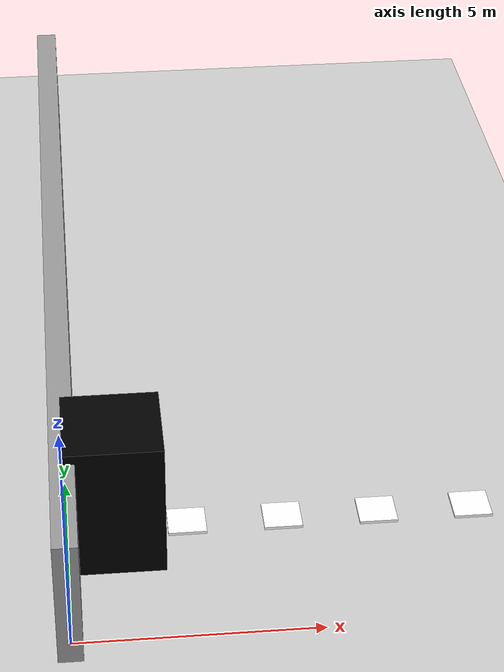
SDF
<sdf version="1.7">
 <world name="default">
  <model name="ground_plane">
   <static>1</static>
   <link name="link">
    <collision name="collision">
     <geometry><plane><normal>0 0 1</normal><size>100 100</size></plane></geometry>
     <surface><friction><ode><mu>100</mu><mu2>50</mu2></ode></friction></surface>
    </collision>
    <visual name="visual">
     <cast_shadows>0</cast_shadows>
     <geometry><plane><normal>0 0 1</normal><size>100 100</size></plane></geometry>
     <material>
      <script><uri>file://media/materials/scripts/gazebo.material</uri><name>Gazebo/Grey</name></script>
     </material>
    </visual>
   </link>
  </model>
  <model name="brick_black_2x2_9">
   <link name="chassis">
    <pose>0 0 1.5 0 -0 0</pose>
    <inertial>
     <mass>1</mass>
     <inertia><ixx>1</ixx><ixy>0</ixy><ixz>0</ixz><iyy>1</iyy><iyz>0</iyz><izz>1</izz></inertia>
    </inertial>
    <visual name="visual">
     <geometry><mesh><uri>model://brick_box_3x1x3/meshes/simple_box.dae</uri><scale>2 2 3</scale></mesh></geometry>
     <material>
      <script>
       <uri>model://brick_box_3x1x3/materials/scripts</uri>
       <uri>model://brick_box_3x1x3/materials/textures</uri>
       <name>BrickBox/Diffuse</name>
      </script>
      <shader type="vertex"><normal_map>__default__</normal_map></shader>
      <ambient>0 0 0 1</ambient>
      <diffuse>0 0 0 1</diffuse>
      <specular>0 0 0 1</specular>
      <emissive>0 0 0 1</emissive>
      <lighting>1</lighting>
     </material>
    </visual>
    <collision name="collision">
     <geometry><box><size>2 2 3</size></box></geometry>
     <surface>
      <friction>
       <ode><mu>1</mu><mu2>1</mu2><fdir1>0 0 0</fdir1><slip1>0</slip1><slip2>0</slip2></ode>
       <torsional>
        <coefficient>1</coefficient>
        <patch_radius>0</patch_radius>
        <surface_radius>0</surface_radius>
        <use_patch_radius>1</use_patch_radius>
        <ode><slip>0</slip></ode>
       </torsional>
      </friction>
      <bounce><restitution_coefficient>0</restitution_coefficient><threshold>1e+06</threshold></bounce>
      <contact>
       <collide_without_contact>0</collide_without_contact>
       <collide_without_contact_bitmask>1</collide_without_contact_bitmask>
       <collide_bitmask>1</collide_bitmask>
       <ode>
        <soft_cfm>0</soft_cfm>
        <soft_erp>0.2</soft_erp>
        <kp>1e+13</kp>
        <kd>1</kd>
        <max_vel>0.01</max_vel>
        <min_depth>0</min_depth>
       </ode>
       <bullet>
        <split_impulse>1</split_impulse>
        <split_impulse_penetration_threshold>-0.01</split_impulse_penetration_threshold>
        <soft_cfm>0</soft_cfm>
        <soft_erp>0.2</soft_erp>
        <kp>1e+13</kp>
        <kd>1</kd>
       </bullet>
      </contact>
     </surface>
    </collision>
   </link>
   <static>1</static>
   <pose>1 3 0 0 -0 0</pose>
  </model>
  <model name="grey_wall_22_1">
   <link name="link">
    <pose>0 0 1.4 0 -0 0</pose>
    <inertial>
     <mass>1</mass>
     <inertia><ixx>1</ixx><ixy>0</ixy><ixz>0</ixz><iyy>1</iyy><iyz>0</iyz><izz>1</izz></inertia>
    </inertial>
    <visual name="visual">
     <cast_shadows>0</cast_shadows>
     <geometry><box><size>22 0.5 2.8</size></box></geometry>
     <material>
      <script>
       <uri>model://grey_wall/materials/scripts</uri>
       <uri>model://grey_wall/materials/textures</uri>
       <name>vrc/grey_wall</name>
      </script>
      <shader type="vertex"><normal_map>__default__</normal_map></shader>
      <ambient>1 1 1 1</ambient>
      <diffuse>1 1 1 1</diffuse>
      <specular>0 0 0 1</specular>
      <emissive>0 0 0 1</emissive>
     </material>
    </visual>
    <collision name="collision">
     <geometry><box><size>22 0.5 2.8</size></box></geometry>
     <surface>
      <friction>
       <ode><mu>1</mu><mu2>1</mu2><fdir1>0 0 0</fdir1><slip1>0</slip1><slip2>0</slip2></ode>
       <torsional>
        <coefficient>1</coefficient>
        <patch_radius>0</patch_radius>
        <surface_radius>0</surface_radius>
        <use_patch_radius>1</use_patch_radius>
        <ode><slip>0</slip></ode>
       </torsional>
      </friction>
      <bounce><restitution_coefficient>0</restitution_coefficient><threshold>1e+06</threshold></bounce>
      <contact>
       <collide_without_contact>0</collide_without_contact>
       <collide_without_contact_bitmask>1</collide_without_contact_bitmask>
       <collide_bitmask>1</collide_bitmask>
       <ode>
        <soft_cfm>0</soft_cfm>
        <soft_erp>0.2</soft_erp>
        <kp>1e+13</kp>
        <kd>1</kd>
        <max_vel>0.01</max_vel>
        <min_depth>0</min_depth>
       </ode>
       <bullet>
        <split_impulse>1</split_impulse>
        <split_impulse_penetration_threshold>-0.01</split_impulse_penetration_threshold>
        <soft_cfm>0</soft_cfm>
        <soft_erp>0.2</soft_erp>
        <kp>1e+13</kp>
        <kd>1</kd>
       </bullet>
      </contact>
     </surface>
    </collision>
   </link>
   <static>1</static>
   <pose>0 10.5 0 0 -0 1.57</pose>
  </model>
  <model name="number2_0">
   <link name="link">
    <inertial>
     <mass>1</mass>
     <inertia><ixx>1</ixx><ixy>0</ixy><ixz>0</ixz><iyy>1</iyy><iyz>0</iyz><izz>1</izz></inertia>
    </inertial>
    <visual name="visual">
     <geometry><mesh><uri>model://number1/meshes/number.dae</uri><scale>1 1 0.1</scale></mesh></geometry>
     <material>
      <script>
       <uri>model://number2/materials/scripts</uri>
       <uri>model://number2/materials/textures</uri>
       <name>Number/Two</name>
      </script>
      <shader type="pixel"><normal_map>__default__</normal_map></shader>
      <ambient>1 1 1 1</ambient>
      <diffuse>1 1 1 1</diffuse>
      <specular>0 0 0 1</specular>
      <emissive>0 0 0 1</emissive>
     </material>
    </visual>
   </link>
   <static>1</static>
   <pose>8.5 3.5 0 0 -0 3.14</pose>
  </model>
  <model name="number2_1">
   <link name="link">
    <inertial>
     <mass>1</mass>
     <inertia><ixx>1</ixx><ixy>0</ixy><ixz>0</ixz><iyy>1</iyy><iyz>0</iyz><izz>1</izz></inertia>
    </inertial>
    <visual name="visual">
     <geometry><mesh><uri>model://number1/meshes/number.dae</uri><scale>1 1 0.1</scale></mesh></geometry>
     <material>
      <script>
       <uri>model://number2/materials/scripts</uri>
       <uri>model://number2/materials/textures</uri>
       <name>Number/Two</name>
      </script>
      <shader type="pixel"><normal_map>__default__</normal_map></shader>
      <ambient>1 1 1 1</ambient>
      <diffuse>1 1 1 1</diffuse>
      <specular>0 0 0 1</specular>
      <emissive>0 0 0 1</emissive>
     </material>
    </visual>
   </link>
   <static>1</static>
   <pose>6.5 3.5 0 0 -0 3.14</pose>
  </model>
  <model name="number3_0">
   <link name="link">
    <inertial>
     <mass>1</mass>
     <inertia><ixx>1</ixx><ixy>0</ixy><ixz>0</ixz><iyy>1</iyy><iyz>0</iyz><izz>1</izz></inertia>
    </inertial>
    <visual name="visual">
     <geometry><mesh><uri>model://number1/meshes/number.dae</uri><scale>1 1 0.1</scale></mesh></geometry>
     <material>
      <script>
       <uri>model://number3/materials/scripts</uri>
       <uri>model://number3/materials/textures</uri>
       <name>Number/Three</name>
      </script>
      <shader type="pixel"><normal_map>__default__</normal_map></shader>
      <ambient>1 1 1 1</ambient>
      <diffuse>1 1 1 1</diffuse>
      <specular>0 0 0 1</specular>
      <emissive>0 0 0 1</emissive>
     </material>
    </visual>
   </link>
   <static>1</static>
   <pose>4.5 3.5 0 0 -0 3.14</pose>
  </model>
  <model name="number3_1">
   <link name="link">
    <inertial>
     <mass>1</mass>
     <inertia><ixx>1</ixx><ixy>0</ixy><ixz>0</ixz><iyy>1</iyy><iyz>0</iyz><izz>1</izz></inertia>
    </inertial>
    <visual name="visual">
     <geometry><mesh><uri>model://number1/meshes/number.dae</uri><scale>1 1 0.1</scale></mesh></geometry>
     <material>
      <script>
       <uri>model://number3/materials/scripts</uri>
       <uri>model://number3/materials/textures</uri>
       <name>Number/Three</name>
      </script>
      <shader type="pixel"><normal_map>__default__</normal_map></shader>
      <ambient>1 1 1 1</ambient>
      <diffuse>1 1 1 1</diffuse>
      <specular>0 0 0 1</specular>
      <emissive>0 0 0 1</emissive>
     </material>
    </visual>
   </link>
   <static>1</static>
   <pose>2.5 3.5 0 0 -0 3.14</pose>
  </model>
 </world>
</sdf>
